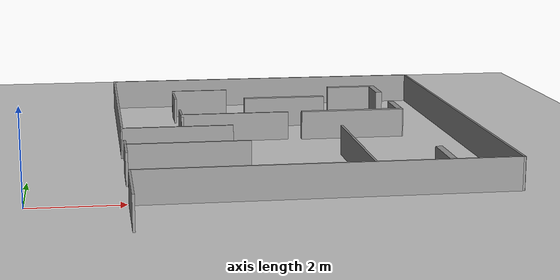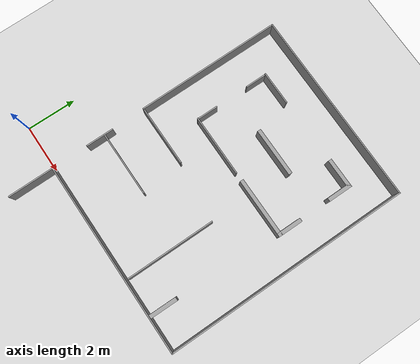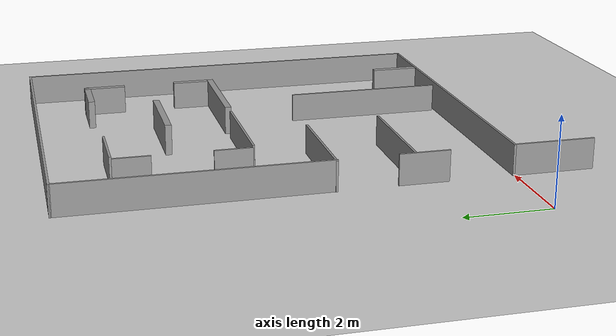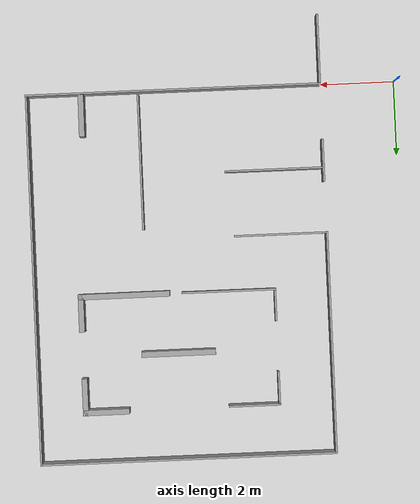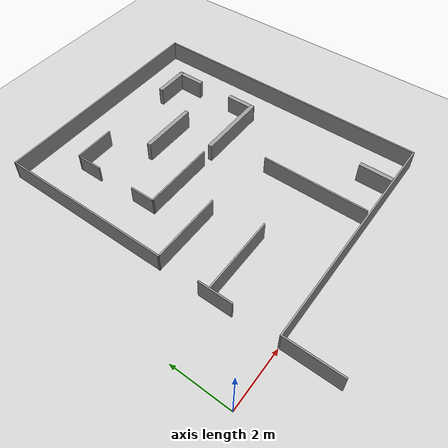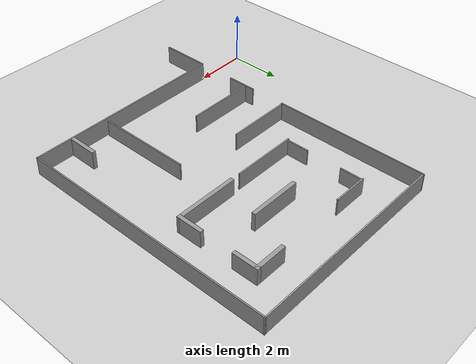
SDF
<sdf version="1.6">
 <world name="default">
  <model name="ground_plane">
   <static>1</static>
   <link name="link">
    <collision name="collision">
     <geometry><plane><normal>0 0 1</normal><size>100 100</size></plane></geometry>
     <surface><friction><ode><mu>100</mu><mu2>50</mu2></ode></friction></surface>
    </collision>
    <visual name="visual">
     <cast_shadows>0</cast_shadows>
     <geometry><plane><normal>0 0 1</normal><size>100 100</size></plane></geometry>
     <material>
      <script><uri>file://media/materials/scripts/gazebo.material</uri><name>Gazebo/Grey</name></script>
     </material>
    </visual>
   </link>
  </model>
  <light name="sun" type="directional">
   <pose>0 0 10 0 -0 0</pose>
   <diffuse>0.8 0.8 0.8 1</diffuse>
   <specular>0.2 0.2 0.2 1</specular>
   <attenuation>
    <range>1000</range>
    <constant>0.9</constant>
    <linear>0.01</linear>
    <quadratic>0.001</quadratic>
   </attenuation>
   <direction>-0.5 0.1 -0.9</direction>
  </light>
  <gravity>0 0 -9.8</gravity>
  <magnetic_field>6e-06 2.3e-05 -4.2e-05</magnetic_field>
  <atmosphere type="adiabatic"/>
  <physics name="default_physics" default="0" type="ode">
   <max_step_size>0.001</max_step_size>
   <real_time_factor>1</real_time_factor>
   <real_time_update_rate>1000</real_time_update_rate>
  </physics>
  <scene><ambient>0.4 0.4 0.4 1</ambient><background>0.7 0.7 0.7 1</background><shadows>1</shadows></scene>
  <audio><device>default</device></audio>
  <spherical_coordinates>
   <surface_model>EARTH_WGS84</surface_model>
   <latitude_deg>0</latitude_deg>
   <longitude_deg>0</longitude_deg>
   <elevation>0</elevation>
   <heading_deg>0</heading_deg>
  </spherical_coordinates>
  <model name="Labyrinth">
   <link name="Wall_0">
    <pose>0.016546 -4.05212 0 0 0 -0.000316</pose>
    <kinematic>1</kinematic>
    <inertial>
     <mass>1</mass>
     <inertia><ixx>1</ixx><ixy>0</ixy><ixz>0</ixz><iyy>1</iyy><iyz>0</iyz><izz>1</izz></inertia>
    </inertial>
    <visual name="Wall_0_Visual">
     <pose>0 0 0.2 0 -0 0</pose>
     <geometry><box><size>7.96912 0.05 1</size></box></geometry>
     <material>
      <script><uri>file://media/materials/scripts/gazebo.material</uri><name>Gazebo/Grey</name></script>
      <ambient>1 1 1 1</ambient>
      <shader type="vertex"><normal_map>__default__</normal_map></shader>
     </material>
     <meta><layer>0</layer></meta>
    </visual>
    <collision name="Wall_0_Collision">
     <pose>0 0 0.2 0 -0 0</pose>
     <geometry><box><size>7.96912 0.05 1</size></box></geometry>
     <surface>
      <friction>
       <ode><mu>1</mu><mu2>1</mu2><fdir1>0 0 0</fdir1><slip1>0</slip1><slip2>0</slip2></ode>
       <torsional>
        <coefficient>1</coefficient>
        <patch_radius>0</patch_radius>
        <surface_radius>0</surface_radius>
        <use_patch_radius>1</use_patch_radius>
        <ode><slip>0</slip></ode>
       </torsional>
      </friction>
      <bounce><restitution_coefficient>0</restitution_coefficient><threshold>1e+06</threshold></bounce>
      <contact>
       <collide_without_contact>0</collide_without_contact>
       <collide_without_contact_bitmask>1</collide_without_contact_bitmask>
       <collide_bitmask>1</collide_bitmask>
       <ode>
        <soft_cfm>0</soft_cfm>
        <soft_erp>0.2</soft_erp>
        <kp>1e+13</kp>
        <kd>1</kd>
        <max_vel>0.01</max_vel>
        <min_depth>0</min_depth>
       </ode>
       <bullet>
        <split_impulse>1</split_impulse>
        <split_impulse_penetration_threshold>-0.01</split_impulse_penetration_threshold>
        <soft_cfm>0</soft_cfm>
        <soft_erp>0.2</soft_erp>
        <kp>1e+13</kp>
        <kd>1</kd>
       </bullet>
      </contact>
     </surface>
    </collision>
   </link>
   <link name="Wall_10">
    <pose>-2.60801 -1.78987 0 0 -0 0</pose>
    <kinematic>1</kinematic>
    <inertial>
     <mass>1</mass>
     <inertia><ixx>1</ixx><ixy>0</ixy><ixz>0</ixz><iyy>1</iyy><iyz>0</iyz><izz>1</izz></inertia>
    </inertial>
    <visual name="Wall_10_Visual">
     <pose>0 0 0.2 0 -0 0</pose>
     <geometry><box><size>2.65049 0.05 1</size></box></geometry>
     <material>
      <script><uri>file://media/materials/scripts/gazebo.material</uri><name>Gazebo/Grey</name></script>
      <ambient>1 1 1 1</ambient>
      <shader type="vertex"><normal_map>__default__</normal_map></shader>
     </material>
     <meta><layer>0</layer></meta>
    </visual>
    <collision name="Wall_10_Collision">
     <pose>0 0 0.2 0 -0 0</pose>
     <geometry><box><size>2.65049 0.05 1</size></box></geometry>
     <surface>
      <friction>
       <ode><mu>1</mu><mu2>1</mu2><fdir1>0 0 0</fdir1><slip1>0</slip1><slip2>0</slip2></ode>
       <torsional>
        <coefficient>1</coefficient>
        <patch_radius>0</patch_radius>
        <surface_radius>0</surface_radius>
        <use_patch_radius>1</use_patch_radius>
        <ode><slip>0</slip></ode>
       </torsional>
      </friction>
      <bounce><restitution_coefficient>0</restitution_coefficient><threshold>1e+06</threshold></bounce>
      <contact>
       <collide_without_contact>0</collide_without_contact>
       <collide_without_contact_bitmask>1</collide_without_contact_bitmask>
       <collide_bitmask>1</collide_bitmask>
       <ode>
        <soft_cfm>0</soft_cfm>
        <soft_erp>0.2</soft_erp>
        <kp>1e+13</kp>
        <kd>1</kd>
        <max_vel>0.01</max_vel>
        <min_depth>0</min_depth>
       </ode>
       <bullet>
        <split_impulse>1</split_impulse>
        <split_impulse_penetration_threshold>-0.01</split_impulse_penetration_threshold>
        <soft_cfm>0</soft_cfm>
        <soft_erp>0.2</soft_erp>
        <kp>1e+13</kp>
        <kd>1</kd>
       </bullet>
      </contact>
     </surface>
    </collision>
   </link>
   <link name="Wall_12">
    <pose>-1.83302 4.53513 0 0 -0 3.14159</pose>
    <kinematic>1</kinematic>
    <inertial>
     <mass>1</mass>
     <inertia><ixx>1</ixx><ixy>0</ixy><ixz>0</ixz><iyy>1</iyy><iyz>0</iyz><izz>1</izz></inertia>
    </inertial>
    <visual name="Wall_12_Visual">
     <pose>0 0 0.15 0 -0 0</pose>
     <geometry><box><size>1.4 0.05 1</size></box></geometry>
     <material>
      <script><uri>file://media/materials/scripts/gazebo.material</uri><name>Gazebo/Grey</name></script>
      <ambient>1 1 1 1</ambient>
      <shader type="vertex"><normal_map>__default__</normal_map></shader>
     </material>
     <meta><layer>0</layer></meta>
    </visual>
    <collision name="Wall_12_Collision">
     <pose>0 0 0.15 0 -0 0</pose>
     <geometry><box><size>1.4 0.05 1</size></box></geometry>
     <surface>
      <friction>
       <ode><mu>1</mu><mu2>1</mu2><fdir1>0 0 0</fdir1><slip1>0</slip1><slip2>0</slip2></ode>
       <torsional>
        <coefficient>1</coefficient>
        <patch_radius>0</patch_radius>
        <surface_radius>0</surface_radius>
        <use_patch_radius>1</use_patch_radius>
        <ode><slip>0</slip></ode>
       </torsional>
      </friction>
      <bounce><restitution_coefficient>0</restitution_coefficient><threshold>1e+06</threshold></bounce>
      <contact>
       <collide_without_contact>0</collide_without_contact>
       <collide_without_contact_bitmask>1</collide_without_contact_bitmask>
       <collide_bitmask>1</collide_bitmask>
       <ode>
        <soft_cfm>0</soft_cfm>
        <soft_erp>0.2</soft_erp>
        <kp>1e+13</kp>
        <kd>1</kd>
        <max_vel>0.01</max_vel>
        <min_depth>0</min_depth>
       </ode>
       <bullet>
        <split_impulse>1</split_impulse>
        <split_impulse_penetration_threshold>-0.01</split_impulse_penetration_threshold>
        <soft_cfm>0</soft_cfm>
        <soft_erp>0.2</soft_erp>
        <kp>1e+13</kp>
        <kd>1</kd>
       </bullet>
      </contact>
     </surface>
    </collision>
   </link>
   <link name="Wall_13">
    <pose>-2.50801 4.11013 0 0 0 -1.5708</pose>
    <kinematic>1</kinematic>
    <inertial>
     <mass>1</mass>
     <inertia><ixx>1</ixx><ixy>0</ixy><ixz>0</ixz><iyy>1</iyy><iyz>0</iyz><izz>1</izz></inertia>
    </inertial>
    <visual name="Wall_13_Visual">
     <pose>0 0 0.1 0 -0 0</pose>
     <geometry><box><size>0.9 0.05 1</size></box></geometry>
     <material>
      <script><uri>file://media/materials/scripts/gazebo.material</uri><name>Gazebo/Grey</name></script>
      <ambient>1 1 1 1</ambient>
      <shader type="vertex"><normal_map>__default__</normal_map></shader>
     </material>
     <meta><layer>0</layer></meta>
    </visual>
    <collision name="Wall_13_Collision">
     <pose>0 0 0.1 0 -0 0</pose>
     <geometry><box><size>0.9 0.05 1</size></box></geometry>
     <surface>
      <friction>
       <ode><mu>1</mu><mu2>1</mu2><fdir1>0 0 0</fdir1><slip1>0</slip1><slip2>0</slip2></ode>
       <torsional>
        <coefficient>1</coefficient>
        <patch_radius>0</patch_radius>
        <surface_radius>0</surface_radius>
        <use_patch_radius>1</use_patch_radius>
        <ode><slip>0</slip></ode>
       </torsional>
      </friction>
      <bounce><restitution_coefficient>0</restitution_coefficient><threshold>1e+06</threshold></bounce>
      <contact>
       <collide_without_contact>0</collide_without_contact>
       <collide_without_contact_bitmask>1</collide_without_contact_bitmask>
       <collide_bitmask>1</collide_bitmask>
       <ode>
        <soft_cfm>0</soft_cfm>
        <soft_erp>0.2</soft_erp>
        <kp>1e+13</kp>
        <kd>1</kd>
        <max_vel>0.01</max_vel>
        <min_depth>0</min_depth>
       </ode>
       <bullet>
        <split_impulse>1</split_impulse>
        <split_impulse_penetration_threshold>-0.01</split_impulse_penetration_threshold>
        <soft_cfm>0</soft_cfm>
        <soft_erp>0.2</soft_erp>
        <kp>1e+13</kp>
        <kd>1</kd>
       </bullet>
      </contact>
     </surface>
    </collision>
   </link>
   <link name="Wall_15">
    <pose>2.17498 4.55313 0 0 -0 0</pose>
    <kinematic>1</kinematic>
    <inertial>
     <mass>1</mass>
     <inertia><ixx>1</ixx><ixy>0</ixy><ixz>0</ixz><iyy>1</iyy><iyz>0</iyz><izz>1</izz></inertia>
    </inertial>
    <visual name="Wall_15_Visual">
     <pose>0 0 0.15 0 -0 0</pose>
     <geometry><box><size>1.25 0.15 1</size></box></geometry>
     <material>
      <script><uri>file://media/materials/scripts/gazebo.material</uri><name>Gazebo/Grey</name></script>
      <ambient>1 1 1 1</ambient>
      <shader type="vertex"><normal_map>__default__</normal_map></shader>
     </material>
     <meta><layer>0</layer></meta>
    </visual>
    <collision name="Wall_15_Collision">
     <pose>0 0 0.15 0 -0 0</pose>
     <geometry><box><size>1.25 0.15 1</size></box></geometry>
     <surface>
      <friction>
       <ode><mu>1</mu><mu2>1</mu2><fdir1>0 0 0</fdir1><slip1>0</slip1><slip2>0</slip2></ode>
       <torsional>
        <coefficient>1</coefficient>
        <patch_radius>0</patch_radius>
        <surface_radius>0</surface_radius>
        <use_patch_radius>1</use_patch_radius>
        <ode><slip>0</slip></ode>
       </torsional>
      </friction>
      <bounce><restitution_coefficient>0</restitution_coefficient><threshold>1e+06</threshold></bounce>
      <contact>
       <collide_without_contact>0</collide_without_contact>
       <collide_without_contact_bitmask>1</collide_without_contact_bitmask>
       <collide_bitmask>1</collide_bitmask>
       <ode>
        <soft_cfm>0</soft_cfm>
        <soft_erp>0.2</soft_erp>
        <kp>1e+13</kp>
        <kd>1</kd>
        <max_vel>0.01</max_vel>
        <min_depth>0</min_depth>
       </ode>
       <bullet>
        <split_impulse>1</split_impulse>
        <split_impulse_penetration_threshold>-0.01</split_impulse_penetration_threshold>
        <soft_cfm>0</soft_cfm>
        <soft_erp>0.2</soft_erp>
        <kp>1e+13</kp>
        <kd>1</kd>
       </bullet>
      </contact>
     </surface>
    </collision>
   </link>
   <link name="Wall_16">
    <pose>2.72499 4.12813 0 0 0 -1.5708</pose>
    <kinematic>1</kinematic>
    <inertial>
     <mass>1</mass>
     <inertia><ixx>1</ixx><ixy>0</ixy><ixz>0</ixz><iyy>1</iyy><iyz>0</iyz><izz>1</izz></inertia>
    </inertial>
    <visual name="Wall_16_Visual">
     <pose>0 0 0.15 0 -0 0</pose>
     <geometry><box><size>1 0.15 1</size></box></geometry>
     <material>
      <script><uri>file://media/materials/scripts/gazebo.material</uri><name>Gazebo/Grey</name></script>
      <ambient>1 1 1 1</ambient>
      <shader type="vertex"><normal_map>__default__</normal_map></shader>
     </material>
     <meta><layer>0</layer></meta>
    </visual>
    <collision name="Wall_16_Collision">
     <pose>0 0 0.15 0 -0 0</pose>
     <geometry><box><size>1 0.15 1</size></box></geometry>
     <surface>
      <friction>
       <ode><mu>1</mu><mu2>1</mu2><fdir1>0 0 0</fdir1><slip1>0</slip1><slip2>0</slip2></ode>
       <torsional>
        <coefficient>1</coefficient>
        <patch_radius>0</patch_radius>
        <surface_radius>0</surface_radius>
        <use_patch_radius>1</use_patch_radius>
        <ode><slip>0</slip></ode>
       </torsional>
      </friction>
      <bounce><restitution_coefficient>0</restitution_coefficient><threshold>1e+06</threshold></bounce>
      <contact>
       <collide_without_contact>0</collide_without_contact>
       <collide_without_contact_bitmask>1</collide_without_contact_bitmask>
       <collide_bitmask>1</collide_bitmask>
       <ode>
        <soft_cfm>0</soft_cfm>
        <soft_erp>0.2</soft_erp>
        <kp>1e+13</kp>
        <kd>1</kd>
        <max_vel>0.01</max_vel>
        <min_depth>0</min_depth>
       </ode>
       <bullet>
        <split_impulse>1</split_impulse>
        <split_impulse_penetration_threshold>-0.01</split_impulse_penetration_threshold>
        <soft_cfm>0</soft_cfm>
        <soft_erp>0.2</soft_erp>
        <kp>1e+13</kp>
        <kd>1</kd>
       </bullet>
      </contact>
     </surface>
    </collision>
   </link>
   <link name="Wall_18">
    <pose>-1.25802 1.42763 0 0 -0 3.14119</pose>
    <kinematic>1</kinematic>
    <inertial>
     <mass>1</mass>
     <inertia><ixx>1</ixx><ixy>0</ixy><ixz>0</ixz><iyy>1</iyy><iyz>0</iyz><izz>1</izz></inertia>
    </inertial>
    <visual name="Wall_18_Visual">
     <pose>0 0 0.15 0 -0 0</pose>
     <geometry><box><size>2.546 0.05 1</size></box></geometry>
     <material>
      <script><uri>file://media/materials/scripts/gazebo.material</uri><name>Gazebo/Grey</name></script>
      <ambient>1 1 1 1</ambient>
      <shader type="vertex"><normal_map>__default__</normal_map></shader>
     </material>
     <meta><layer>0</layer></meta>
    </visual>
    <collision name="Wall_18_Collision">
     <pose>0 0 0.15 0 -0 0</pose>
     <geometry><box><size>2.546 0.05 1</size></box></geometry>
     <surface>
      <friction>
       <ode><mu>1</mu><mu2>1</mu2><fdir1>0 0 0</fdir1><slip1>0</slip1><slip2>0</slip2></ode>
       <torsional>
        <coefficient>1</coefficient>
        <patch_radius>0</patch_radius>
        <surface_radius>0</surface_radius>
        <use_patch_radius>1</use_patch_radius>
        <ode><slip>0</slip></ode>
       </torsional>
      </friction>
      <bounce><restitution_coefficient>0</restitution_coefficient><threshold>1e+06</threshold></bounce>
      <contact>
       <collide_without_contact>0</collide_without_contact>
       <collide_without_contact_bitmask>1</collide_without_contact_bitmask>
       <collide_bitmask>1</collide_bitmask>
       <ode>
        <soft_cfm>0</soft_cfm>
        <soft_erp>0.2</soft_erp>
        <kp>1e+13</kp>
        <kd>1</kd>
        <max_vel>0.01</max_vel>
        <min_depth>0</min_depth>
       </ode>
       <bullet>
        <split_impulse>1</split_impulse>
        <split_impulse_penetration_threshold>-0.01</split_impulse_penetration_threshold>
        <soft_cfm>0</soft_cfm>
        <soft_erp>0.2</soft_erp>
        <kp>1e+13</kp>
        <kd>1</kd>
       </bullet>
      </contact>
     </surface>
    </collision>
   </link>
   <link name="Wall_19">
    <pose>-2.50602 1.85013 0 0 -0 1.5708</pose>
    <kinematic>1</kinematic>
    <inertial>
     <mass>1</mass>
     <inertia><ixx>1</ixx><ixy>0</ixy><ixz>0</ixz><iyy>1</iyy><iyz>0</iyz><izz>1</izz></inertia>
    </inertial>
    <visual name="Wall_19_Visual">
     <pose>0 0 0.1 0 -0 0</pose>
     <geometry><box><size>0.894436 0.05 1</size></box></geometry>
     <material>
      <script><uri>file://media/materials/scripts/gazebo.material</uri><name>Gazebo/Grey</name></script>
      <ambient>1 1 1 1</ambient>
      <shader type="vertex"><normal_map>__default__</normal_map></shader>
     </material>
     <meta><layer>0</layer></meta>
    </visual>
    <collision name="Wall_19_Collision">
     <pose>0 0 0.1 0 -0 0</pose>
     <geometry><box><size>0.894436 0.05 1</size></box></geometry>
     <surface>
      <friction>
       <ode><mu>1</mu><mu2>1</mu2><fdir1>0 0 0</fdir1><slip1>0</slip1><slip2>0</slip2></ode>
       <torsional>
        <coefficient>1</coefficient>
        <patch_radius>0</patch_radius>
        <surface_radius>0</surface_radius>
        <use_patch_radius>1</use_patch_radius>
        <ode><slip>0</slip></ode>
       </torsional>
      </friction>
      <bounce><restitution_coefficient>0</restitution_coefficient><threshold>1e+06</threshold></bounce>
      <contact>
       <collide_without_contact>0</collide_without_contact>
       <collide_without_contact_bitmask>1</collide_without_contact_bitmask>
       <collide_bitmask>1</collide_bitmask>
       <ode>
        <soft_cfm>0</soft_cfm>
        <soft_erp>0.2</soft_erp>
        <kp>1e+13</kp>
        <kd>1</kd>
        <max_vel>0.01</max_vel>
        <min_depth>0</min_depth>
       </ode>
       <bullet>
        <split_impulse>1</split_impulse>
        <split_impulse_penetration_threshold>-0.01</split_impulse_penetration_threshold>
        <soft_cfm>0</soft_cfm>
        <soft_erp>0.2</soft_erp>
        <kp>1e+13</kp>
        <kd>1</kd>
       </bullet>
      </contact>
     </surface>
    </collision>
   </link>
   <link name="Wall_21">
    <pose>1.57299 1.42963 0 0 -0 0.001292</pose>
    <kinematic>1</kinematic>
    <inertial>
     <mass>1</mass>
     <inertia><ixx>1</ixx><ixy>0</ixy><ixz>0</ixz><iyy>1</iyy><iyz>0</iyz><izz>1</izz></inertia>
    </inertial>
    <visual name="Wall_21_Visual">
     <pose>0 0 0.15 0 -0 0</pose>
     <geometry><box><size>2.47225 0.15 1</size></box></geometry>
     <material>
      <script><uri>file://media/materials/scripts/gazebo.material</uri><name>Gazebo/Grey</name></script>
      <ambient>1 1 1 1</ambient>
      <shader type="vertex"><normal_map>__default__</normal_map></shader>
     </material>
     <meta><layer>0</layer></meta>
    </visual>
    <collision name="Wall_21_Collision">
     <pose>0 0 0.15 0 -0 0</pose>
     <geometry><box><size>2.47225 0.15 1</size></box></geometry>
     <surface>
      <friction>
       <ode><mu>1</mu><mu2>1</mu2><fdir1>0 0 0</fdir1><slip1>0</slip1><slip2>0</slip2></ode>
       <torsional>
        <coefficient>1</coefficient>
        <patch_radius>0</patch_radius>
        <surface_radius>0</surface_radius>
        <use_patch_radius>1</use_patch_radius>
        <ode><slip>0</slip></ode>
       </torsional>
      </friction>
      <bounce><restitution_coefficient>0</restitution_coefficient><threshold>1e+06</threshold></bounce>
      <contact>
       <collide_without_contact>0</collide_without_contact>
       <collide_without_contact_bitmask>1</collide_without_contact_bitmask>
       <collide_bitmask>1</collide_bitmask>
       <ode>
        <soft_cfm>0</soft_cfm>
        <soft_erp>0.2</soft_erp>
        <kp>1e+13</kp>
        <kd>1</kd>
        <max_vel>0.01</max_vel>
        <min_depth>0</min_depth>
       </ode>
       <bullet>
        <split_impulse>1</split_impulse>
        <split_impulse_penetration_threshold>-0.01</split_impulse_penetration_threshold>
        <soft_cfm>0</soft_cfm>
        <soft_erp>0.2</soft_erp>
        <kp>1e+13</kp>
        <kd>1</kd>
       </bullet>
      </contact>
     </surface>
    </collision>
   </link>
   <link name="Wall_22">
    <pose>2.73549 1.86513 0 0 -0 1.56734</pose>
    <kinematic>1</kinematic>
    <inertial>
     <mass>1</mass>
     <inertia><ixx>1</ixx><ixy>0</ixy><ixz>0</ixz><iyy>1</iyy><iyz>0</iyz><izz>1</izz></inertia>
    </inertial>
    <visual name="Wall_22_Visual">
     <pose>0 0 0.15 0 -0 0</pose>
     <geometry><box><size>1.0175 0.15 1</size></box></geometry>
     <material>
      <script><uri>file://media/materials/scripts/gazebo.material</uri><name>Gazebo/Grey</name></script>
      <ambient>1 1 1 1</ambient>
      <shader type="vertex"><normal_map>__default__</normal_map></shader>
     </material>
     <meta><layer>0</layer></meta>
    </visual>
    <collision name="Wall_22_Collision">
     <pose>0 0 0.15 0 -0 0</pose>
     <geometry><box><size>1.0175 0.15 1</size></box></geometry>
     <surface>
      <friction>
       <ode><mu>1</mu><mu2>1</mu2><fdir1>0 0 0</fdir1><slip1>0</slip1><slip2>0</slip2></ode>
       <torsional>
        <coefficient>1</coefficient>
        <patch_radius>0</patch_radius>
        <surface_radius>0</surface_radius>
        <use_patch_radius>1</use_patch_radius>
        <ode><slip>0</slip></ode>
       </torsional>
      </friction>
      <bounce><restitution_coefficient>0</restitution_coefficient><threshold>1e+06</threshold></bounce>
      <contact>
       <collide_without_contact>0</collide_without_contact>
       <collide_without_contact_bitmask>1</collide_without_contact_bitmask>
       <collide_bitmask>1</collide_bitmask>
       <ode>
        <soft_cfm>0</soft_cfm>
        <soft_erp>0.2</soft_erp>
        <kp>1e+13</kp>
        <kd>1</kd>
        <max_vel>0.01</max_vel>
        <min_depth>0</min_depth>
       </ode>
       <bullet>
        <split_impulse>1</split_impulse>
        <split_impulse_penetration_threshold>-0.01</split_impulse_penetration_threshold>
        <soft_cfm>0</soft_cfm>
        <soft_erp>0.2</soft_erp>
        <kp>1e+13</kp>
        <kd>1</kd>
       </bullet>
      </contact>
     </surface>
    </collision>
   </link>
   <link name="Wall_24">
    <pose>0.158985 3.04213 0 0 -0 3.14159</pose>
    <kinematic>1</kinematic>
    <inertial>
     <mass>1</mass>
     <inertia><ixx>1</ixx><ixy>0</ixy><ixz>0</ixz><iyy>1</iyy><iyz>0</iyz><izz>1</izz></inertia>
    </inertial>
    <visual name="Wall_24_Visual">
     <pose>0 0 0.2 0 -0 0</pose>
     <geometry><box><size>2 0.15 1</size></box></geometry>
     <material>
      <script><uri>file://media/materials/scripts/gazebo.material</uri><name>Gazebo/Grey</name></script>
      <ambient>1 1 1 1</ambient>
      <shader type="vertex"><normal_map>__default__</normal_map></shader>
     </material>
     <meta><layer>0</layer></meta>
    </visual>
    <collision name="Wall_24_Collision">
     <pose>0 0 0.2 0 -0 0</pose>
     <geometry><box><size>2 0.15 1</size></box></geometry>
     <surface>
      <friction>
       <ode><mu>1</mu><mu2>1</mu2><fdir1>0 0 0</fdir1><slip1>0</slip1><slip2>0</slip2></ode>
       <torsional>
        <coefficient>1</coefficient>
        <patch_radius>0</patch_radius>
        <surface_radius>0</surface_radius>
        <use_patch_radius>1</use_patch_radius>
        <ode><slip>0</slip></ode>
       </torsional>
      </friction>
      <bounce><restitution_coefficient>0</restitution_coefficient><threshold>1e+06</threshold></bounce>
      <contact>
       <collide_without_contact>0</collide_without_contact>
       <collide_without_contact_bitmask>1</collide_without_contact_bitmask>
       <collide_bitmask>1</collide_bitmask>
       <ode>
        <soft_cfm>0</soft_cfm>
        <soft_erp>0.2</soft_erp>
        <kp>1e+13</kp>
        <kd>1</kd>
        <max_vel>0.01</max_vel>
        <min_depth>0</min_depth>
       </ode>
       <bullet>
        <split_impulse>1</split_impulse>
        <split_impulse_penetration_threshold>-0.01</split_impulse_penetration_threshold>
        <soft_cfm>0</soft_cfm>
        <soft_erp>0.2</soft_erp>
        <kp>1e+13</kp>
        <kd>1</kd>
       </bullet>
      </contact>
     </surface>
    </collision>
   </link>
   <link name="Wall_26">
    <pose>0.971985 -2.13787 0 0 0 -1.5708</pose>
    <kinematic>1</kinematic>
    <inertial>
     <mass>1</mass>
     <inertia><ixx>1</ixx><ixy>0</ixy><ixz>0</ixz><iyy>1</iyy><iyz>0</iyz><izz>1</izz></inertia>
    </inertial>
    <visual name="Wall_26_Visual">
     <pose>0 0 0.15 0 -0 0</pose>
     <geometry><box><size>3.65018 0.05 1</size></box></geometry>
     <material>
      <script><uri>file://media/materials/scripts/gazebo.material</uri><name>Gazebo/Grey</name></script>
      <ambient>1 1 1 1</ambient>
      <shader type="vertex"><normal_map>__default__</normal_map></shader>
     </material>
     <meta><layer>0</layer></meta>
    </visual>
    <collision name="Wall_26_Collision">
     <pose>0 0 0.15 0 -0 0</pose>
     <geometry><box><size>3.65018 0.05 1</size></box></geometry>
     <surface>
      <friction>
       <ode><mu>1</mu><mu2>1</mu2><fdir1>0 0 0</fdir1><slip1>0</slip1><slip2>0</slip2></ode>
       <torsional>
        <coefficient>1</coefficient>
        <patch_radius>0</patch_radius>
        <surface_radius>0</surface_radius>
        <use_patch_radius>1</use_patch_radius>
        <ode><slip>0</slip></ode>
       </torsional>
      </friction>
      <bounce><restitution_coefficient>0</restitution_coefficient><threshold>1e+06</threshold></bounce>
      <contact>
       <collide_without_contact>0</collide_without_contact>
       <collide_without_contact_bitmask>1</collide_without_contact_bitmask>
       <collide_bitmask>1</collide_bitmask>
       <ode>
        <soft_cfm>0</soft_cfm>
        <soft_erp>0.2</soft_erp>
        <kp>1e+13</kp>
        <kd>1</kd>
        <max_vel>0.01</max_vel>
        <min_depth>0</min_depth>
       </ode>
       <bullet>
        <split_impulse>1</split_impulse>
        <split_impulse_penetration_threshold>-0.01</split_impulse_penetration_threshold>
        <soft_cfm>0</soft_cfm>
        <soft_erp>0.2</soft_erp>
        <kp>1e+13</kp>
        <kd>1</kd>
       </bullet>
      </contact>
     </surface>
    </collision>
   </link>
   <link name="Wall_28">
    <pose>2.51148 -3.45737 0 0 0 -1.57796</pose>
    <kinematic>1</kinematic>
    <inertial>
     <mass>1</mass>
     <inertia><ixx>1</ixx><ixy>0</ixy><ixz>0</ixz><iyy>1</iyy><iyz>0</iyz><izz>1</izz></inertia>
    </inertial>
    <visual name="Wall_28_Visual">
     <pose>0 0 0.2 0 -0 0</pose>
     <geometry><box><size>1.12681 0.15 1</size></box></geometry>
     <material>
      <script><uri>file://media/materials/scripts/gazebo.material</uri><name>Gazebo/Grey</name></script>
      <ambient>1 1 1 1</ambient>
      <shader type="vertex"><normal_map>__default__</normal_map></shader>
     </material>
     <meta><layer>0</layer></meta>
    </visual>
    <collision name="Wall_28_Collision">
     <pose>0 0 0.2 0 -0 0</pose>
     <geometry><box><size>1.12681 0.15 1</size></box></geometry>
     <surface>
      <friction>
       <ode><mu>1</mu><mu2>1</mu2><fdir1>0 0 0</fdir1><slip1>0</slip1><slip2>0</slip2></ode>
       <torsional>
        <coefficient>1</coefficient>
        <patch_radius>0</patch_radius>
        <surface_radius>0</surface_radius>
        <use_patch_radius>1</use_patch_radius>
        <ode><slip>0</slip></ode>
       </torsional>
      </friction>
      <bounce><restitution_coefficient>0</restitution_coefficient><threshold>1e+06</threshold></bounce>
      <contact>
       <collide_without_contact>0</collide_without_contact>
       <collide_without_contact_bitmask>1</collide_without_contact_bitmask>
       <collide_bitmask>1</collide_bitmask>
       <ode>
        <soft_cfm>0</soft_cfm>
        <soft_erp>0.2</soft_erp>
        <kp>1e+13</kp>
        <kd>1</kd>
        <max_vel>0.01</max_vel>
        <min_depth>0</min_depth>
       </ode>
       <bullet>
        <split_impulse>1</split_impulse>
        <split_impulse_penetration_threshold>-0.01</split_impulse_penetration_threshold>
        <soft_cfm>0</soft_cfm>
        <soft_erp>0.2</soft_erp>
        <kp>1e+13</kp>
        <kd>1</kd>
       </bullet>
      </contact>
     </surface>
    </collision>
   </link>
   <link name="Wall_3">
    <pose>3.97531 0.923721 0 0 -0 1.57096</pose>
    <kinematic>1</kinematic>
    <inertial>
     <mass>1</mass>
     <inertia><ixx>1</ixx><ixy>0</ixy><ixz>0</ixz><iyy>1</iyy><iyz>0</iyz><izz>1</izz></inertia>
    </inertial>
    <visual name="Wall_3_Visual">
     <pose>0 0 0.2 0 -0 0</pose>
     <geometry><box><size>10.0042 0.05 1</size></box></geometry>
     <material>
      <script><uri>file://media/materials/scripts/gazebo.material</uri><name>Gazebo/Grey</name></script>
      <ambient>1 1 1 1</ambient>
      <shader type="vertex"><normal_map>__default__</normal_map></shader>
     </material>
     <meta><layer>0</layer></meta>
    </visual>
    <collision name="Wall_3_Collision">
     <pose>0 0 0.2 0 -0 0</pose>
     <geometry><box><size>10.0042 0.05 1</size></box></geometry>
     <surface>
      <friction>
       <ode><mu>1</mu><mu2>1</mu2><fdir1>0 0 0</fdir1><slip1>0</slip1><slip2>0</slip2></ode>
       <torsional>
        <coefficient>1</coefficient>
        <patch_radius>0</patch_radius>
        <surface_radius>0</surface_radius>
        <use_patch_radius>1</use_patch_radius>
        <ode><slip>0</slip></ode>
       </torsional>
      </friction>
      <bounce><restitution_coefficient>0</restitution_coefficient><threshold>1e+06</threshold></bounce>
      <contact>
       <collide_without_contact>0</collide_without_contact>
       <collide_without_contact_bitmask>1</collide_without_contact_bitmask>
       <collide_bitmask>1</collide_bitmask>
       <ode>
        <soft_cfm>0</soft_cfm>
        <soft_erp>0.2</soft_erp>
        <kp>1e+13</kp>
        <kd>1</kd>
        <max_vel>0.01</max_vel>
        <min_depth>0</min_depth>
       </ode>
       <bullet>
        <split_impulse>1</split_impulse>
        <split_impulse_penetration_threshold>-0.01</split_impulse_penetration_threshold>
        <soft_cfm>0</soft_cfm>
        <soft_erp>0.2</soft_erp>
        <kp>1e+13</kp>
        <kd>1</kd>
       </bullet>
      </contact>
     </surface>
    </collision>
   </link>
   <link name="Wall_30">
    <pose>-3.94301 -4.97587 0 0 0 -1.5708</pose>
    <kinematic>1</kinematic>
    <inertial>
     <mass>1</mass>
     <inertia><ixx>1</ixx><ixy>0</ixy><ixz>0</ixz><iyy>1</iyy><iyz>0</iyz><izz>1</izz></inertia>
    </inertial>
    <visual name="Wall_30_Visual">
     <pose>0 0 0.2 0 -0 0</pose>
     <geometry><box><size>1.8999 0.05 1</size></box></geometry>
     <material>
      <script><uri>file://media/materials/scripts/gazebo.material</uri><name>Gazebo/Grey</name></script>
      <ambient>1 1 1 1</ambient>
      <shader type="vertex"><normal_map>__default__</normal_map></shader>
     </material>
     <meta><layer>0</layer></meta>
    </visual>
    <collision name="Wall_30_Collision">
     <pose>0 0 0.2 0 -0 0</pose>
     <geometry><box><size>1.8999 0.05 1</size></box></geometry>
     <surface>
      <friction>
       <ode><mu>1</mu><mu2>1</mu2><fdir1>0 0 0</fdir1><slip1>0</slip1><slip2>0</slip2></ode>
       <torsional>
        <coefficient>1</coefficient>
        <patch_radius>0</patch_radius>
        <surface_radius>0</surface_radius>
        <use_patch_radius>1</use_patch_radius>
        <ode><slip>0</slip></ode>
       </torsional>
      </friction>
      <bounce><restitution_coefficient>0</restitution_coefficient><threshold>1e+06</threshold></bounce>
      <contact>
       <collide_without_contact>0</collide_without_contact>
       <collide_without_contact_bitmask>1</collide_without_contact_bitmask>
       <collide_bitmask>1</collide_bitmask>
       <ode>
        <soft_cfm>0</soft_cfm>
        <soft_erp>0.2</soft_erp>
        <kp>1e+13</kp>
        <kd>1</kd>
        <max_vel>0.01</max_vel>
        <min_depth>0</min_depth>
       </ode>
       <bullet>
        <split_impulse>1</split_impulse>
        <split_impulse_penetration_threshold>-0.01</split_impulse_penetration_threshold>
        <soft_cfm>0</soft_cfm>
        <soft_erp>0.2</soft_erp>
        <kp>1e+13</kp>
        <kd>1</kd>
       </bullet>
      </contact>
     </surface>
    </collision>
   </link>
   <link name="Wall_4">
    <pose>1.6e-05 5.89799 0 0 0 -3.14135</pose>
    <kinematic>1</kinematic>
    <inertial>
     <mass>1</mass>
     <inertia><ixx>1</ixx><ixy>0</ixy><ixz>0</ixz><iyy>1</iyy><iyz>0</iyz><izz>1</izz></inertia>
    </inertial>
    <visual name="Wall_4_Visual">
     <pose>0 0 0.2 0 -0 0</pose>
     <geometry><box><size>8.00272 0.05 1</size></box></geometry>
     <material>
      <script><uri>file://media/materials/scripts/gazebo.material</uri><name>Gazebo/Grey</name></script>
      <ambient>1 1 1 1</ambient>
      <shader type="vertex"><normal_map>__default__</normal_map></shader>
     </material>
     <meta><layer>0</layer></meta>
    </visual>
    <collision name="Wall_4_Collision">
     <pose>0 0 0.2 0 -0 0</pose>
     <geometry><box><size>8.00272 0.05 1</size></box></geometry>
     <surface>
      <friction>
       <ode><mu>1</mu><mu2>1</mu2><fdir1>0 0 0</fdir1><slip1>0</slip1><slip2>0</slip2></ode>
       <torsional>
        <coefficient>1</coefficient>
        <patch_radius>0</patch_radius>
        <surface_radius>0</surface_radius>
        <use_patch_radius>1</use_patch_radius>
        <ode><slip>0</slip></ode>
       </torsional>
      </friction>
      <bounce><restitution_coefficient>0</restitution_coefficient><threshold>1e+06</threshold></bounce>
      <contact>
       <collide_without_contact>0</collide_without_contact>
       <collide_without_contact_bitmask>1</collide_without_contact_bitmask>
       <collide_bitmask>1</collide_bitmask>
       <ode>
        <soft_cfm>0</soft_cfm>
        <soft_erp>0.2</soft_erp>
        <kp>1e+13</kp>
        <kd>1</kd>
        <max_vel>0.01</max_vel>
        <min_depth>0</min_depth>
       </ode>
       <bullet>
        <split_impulse>1</split_impulse>
        <split_impulse_penetration_threshold>-0.01</split_impulse_penetration_threshold>
        <soft_cfm>0</soft_cfm>
        <soft_erp>0.2</soft_erp>
        <kp>1e+13</kp>
        <kd>1</kd>
       </bullet>
      </contact>
     </surface>
    </collision>
   </link>
   <link name="Wall_5">
    <pose>-3.97164 2.92964 0 0 0 -1.56921</pose>
    <kinematic>1</kinematic>
    <inertial>
     <mass>1</mass>
     <inertia><ixx>1</ixx><ixy>0</ixy><ixz>0</ixz><iyy>1</iyy><iyz>0</iyz><izz>1</izz></inertia>
    </inertial>
    <visual name="Wall_5_Visual">
     <pose>0 0 0.2 0 -0 0</pose>
     <geometry><box><size>5.99128 0.05 1</size></box></geometry>
     <material>
      <script><uri>file://media/materials/scripts/gazebo.material</uri><name>Gazebo/Grey</name></script>
      <ambient>1 1 1 1</ambient>
      <shader type="vertex"><normal_map>__default__</normal_map></shader>
     </material>
     <meta><layer>0</layer></meta>
    </visual>
    <collision name="Wall_5_Collision">
     <pose>0 0 0.2 0 -0 0</pose>
     <geometry><box><size>5.99128 0.05 1</size></box></geometry>
     <surface>
      <friction>
       <ode><mu>1</mu><mu2>1</mu2><fdir1>0 0 0</fdir1><slip1>0</slip1><slip2>0</slip2></ode>
       <torsional>
        <coefficient>1</coefficient>
        <patch_radius>0</patch_radius>
        <surface_radius>0</surface_radius>
        <use_patch_radius>1</use_patch_radius>
        <ode><slip>0</slip></ode>
       </torsional>
      </friction>
      <bounce><restitution_coefficient>0</restitution_coefficient><threshold>1e+06</threshold></bounce>
      <contact>
       <collide_without_contact>0</collide_without_contact>
       <collide_without_contact_bitmask>1</collide_without_contact_bitmask>
       <collide_bitmask>1</collide_bitmask>
       <ode>
        <soft_cfm>0</soft_cfm>
        <soft_erp>0.2</soft_erp>
        <kp>1e+13</kp>
        <kd>1</kd>
        <max_vel>0.01</max_vel>
        <min_depth>0</min_depth>
       </ode>
       <bullet>
        <split_impulse>1</split_impulse>
        <split_impulse_penetration_threshold>-0.01</split_impulse_penetration_threshold>
        <soft_cfm>0</soft_cfm>
        <soft_erp>0.2</soft_erp>
        <kp>1e+13</kp>
        <kd>1</kd>
       </bullet>
      </contact>
     </surface>
    </collision>
   </link>
   <link name="Wall_6">
    <pose>-2.73282 -0.040545 0 0 -0 0.000365</pose>
    <kinematic>1</kinematic>
    <inertial>
     <mass>1</mass>
     <inertia><ixx>1</ixx><ixy>0</ixy><ixz>0</ixz><iyy>1</iyy><iyz>0</iyz><izz>1</izz></inertia>
    </inertial>
    <visual name="Wall_6_Visual">
     <pose>0 0 0.175 0 -0 0</pose>
     <geometry><box><size>2.52961 0.05 1</size></box></geometry>
     <material>
      <script><uri>file://media/materials/scripts/gazebo.material</uri><name>Gazebo/Grey</name></script>
      <ambient>1 1 1 1</ambient>
      <shader type="vertex"><normal_map>__default__</normal_map></shader>
     </material>
     <meta><layer>0</layer></meta>
    </visual>
    <collision name="Wall_6_Collision">
     <pose>0 0 0.175 0 -0 0</pose>
     <geometry><box><size>2.52961 0.05 1</size></box></geometry>
     <surface>
      <friction>
       <ode><mu>1</mu><mu2>1</mu2><fdir1>0 0 0</fdir1><slip1>0</slip1><slip2>0</slip2></ode>
       <torsional>
        <coefficient>1</coefficient>
        <patch_radius>0</patch_radius>
        <surface_radius>0</surface_radius>
        <use_patch_radius>1</use_patch_radius>
        <ode><slip>0</slip></ode>
       </torsional>
      </friction>
      <bounce><restitution_coefficient>0</restitution_coefficient><threshold>1e+06</threshold></bounce>
      <contact>
       <collide_without_contact>0</collide_without_contact>
       <collide_without_contact_bitmask>1</collide_without_contact_bitmask>
       <collide_bitmask>1</collide_bitmask>
       <ode>
        <soft_cfm>0</soft_cfm>
        <soft_erp>0.2</soft_erp>
        <kp>1e+13</kp>
        <kd>1</kd>
        <max_vel>0.01</max_vel>
        <min_depth>0</min_depth>
       </ode>
       <bullet>
        <split_impulse>1</split_impulse>
        <split_impulse_penetration_threshold>-0.01</split_impulse_penetration_threshold>
        <soft_cfm>0</soft_cfm>
        <soft_erp>0.2</soft_erp>
        <kp>1e+13</kp>
        <kd>1</kd>
       </bullet>
      </contact>
     </surface>
    </collision>
   </link>
   <link name="Wall_8">
    <pose>-3.94801 -1.99287 0 0 0 -1.5708</pose>
    <kinematic>1</kinematic>
    <inertial>
     <mass>1</mass>
     <inertia><ixx>1</ixx><ixy>0</ixy><ixz>0</ixz><iyy>1</iyy><iyz>0</iyz><izz>1</izz></inertia>
    </inertial>
    <visual name="Wall_8_Visual">
     <pose>0 0 0.2 0 -0 0</pose>
     <geometry><box><size>1.14966 0.05 1</size></box></geometry>
     <material>
      <script><uri>file://media/materials/scripts/gazebo.material</uri><name>Gazebo/Grey</name></script>
      <ambient>1 1 1 1</ambient>
      <shader type="vertex"><normal_map>__default__</normal_map></shader>
     </material>
     <meta><layer>0</layer></meta>
    </visual>
    <collision name="Wall_8_Collision">
     <pose>0 0 0.2 0 -0 0</pose>
     <geometry><box><size>1.14966 0.05 1</size></box></geometry>
     <surface>
      <friction>
       <ode><mu>1</mu><mu2>1</mu2><fdir1>0 0 0</fdir1><slip1>0</slip1><slip2>0</slip2></ode>
       <torsional>
        <coefficient>1</coefficient>
        <patch_radius>0</patch_radius>
        <surface_radius>0</surface_radius>
        <use_patch_radius>1</use_patch_radius>
        <ode><slip>0</slip></ode>
       </torsional>
      </friction>
      <bounce><restitution_coefficient>0</restitution_coefficient><threshold>1e+06</threshold></bounce>
      <contact>
       <collide_without_contact>0</collide_without_contact>
       <collide_without_contact_bitmask>1</collide_without_contact_bitmask>
       <collide_bitmask>1</collide_bitmask>
       <ode>
        <soft_cfm>0</soft_cfm>
        <soft_erp>0.2</soft_erp>
        <kp>1e+13</kp>
        <kd>1</kd>
        <max_vel>0.01</max_vel>
        <min_depth>0</min_depth>
       </ode>
       <bullet>
        <split_impulse>1</split_impulse>
        <split_impulse_penetration_threshold>-0.01</split_impulse_penetration_threshold>
        <soft_cfm>0</soft_cfm>
        <soft_erp>0.2</soft_erp>
        <kp>1e+13</kp>
        <kd>1</kd>
       </bullet>
      </contact>
     </surface>
    </collision>
   </link>
   <static>0</static>
   <pose>5.99001 4.06187 0 0 -0 0</pose>
  </model>
 </world>
</sdf>
